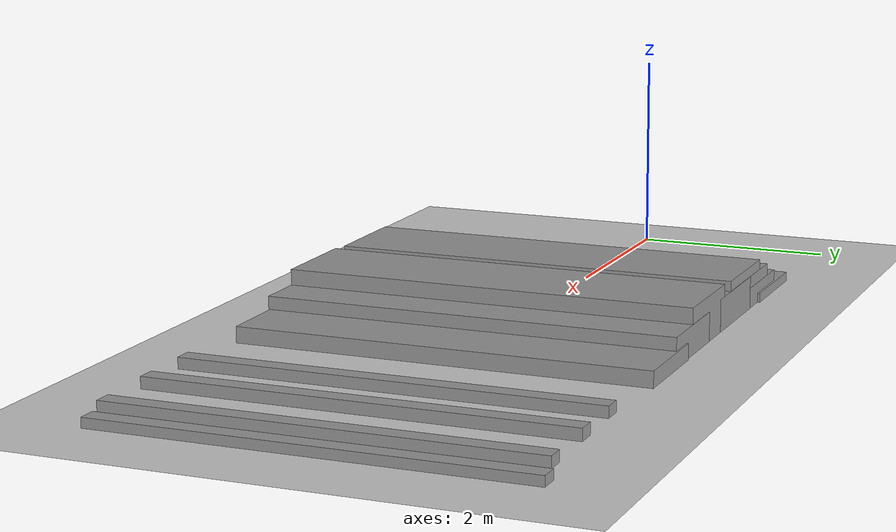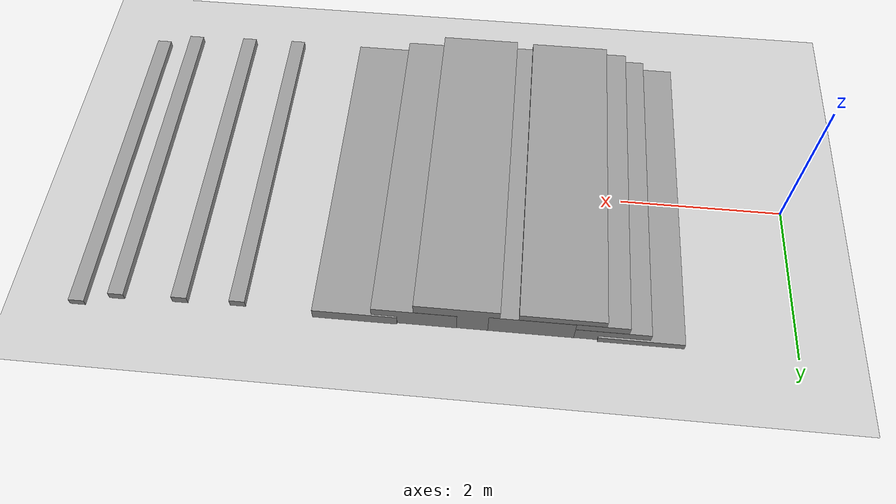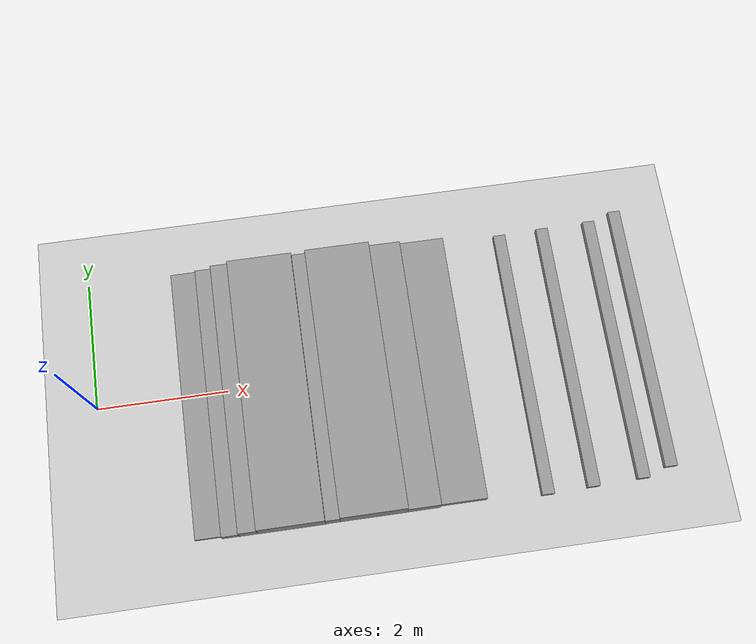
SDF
<sdf version="1.7">
 <world name="default">
  <light name="sun" type="directional">
   <pose>0 0 10 0 -0 0</pose>
   <diffuse>0.8 0.8 0.8 1</diffuse>
   <specular>0.2 0.2 0.2 1</specular>
   <attenuation>
    <range>1000</range>
    <constant>0.9</constant>
    <linear>0.01</linear>
    <quadratic>0.001</quadratic>
   </attenuation>
   <direction>-0.5 0.1 -0.9</direction>
   <spot><inner_angle>0</inner_angle><outer_angle>0</outer_angle><falloff>0</falloff></spot>
  </light>
  <model name="ground_plane">
   <static>1</static>
   <link name="link">
    <collision name="collision">
     <geometry><plane><normal>0 0 1</normal><size>100 100</size></plane></geometry>
     <surface>
      <contact><collide_bitmask>65535</collide_bitmask></contact>
      <friction><ode><mu>100</mu><mu2>50</mu2></ode></friction>
     </surface>
    </collision>
    <visual name="visual">
     <cast_shadows>0</cast_shadows>
     <geometry><plane><normal>0 0 1</normal><size>100 100</size></plane></geometry>
     <material>
      <script><uri>file://media/materials/scripts/gazebo.material</uri><name>Gazebo/Grey</name></script>
     </material>
    </visual>
   </link>
  </model>
  <gravity>0 0 -9.8</gravity>
  <magnetic_field>6e-06 2.3e-05 -4.2e-05</magnetic_field>
  <atmosphere type="adiabatic"/>
  <physics type="ode">
   <max_step_size>0.001</max_step_size>
   <real_time_factor>1</real_time_factor>
   <real_time_update_rate>1000</real_time_update_rate>
  </physics>
  <scene><ambient>0.4 0.4 0.4 1</ambient><background>0.7 0.7 0.7 1</background><shadows>1</shadows></scene>
  <audio><device>default</device></audio>
  <spherical_coordinates>
   <surface_model>EARTH_WGS84</surface_model>
   <latitude_deg>0</latitude_deg>
   <longitude_deg>0</longitude_deg>
   <elevation>0</elevation>
   <heading_deg>0</heading_deg>
  </spherical_coordinates>
  <model name="unit_box_clone_0_clone_clone">
   <pose>1.79924 -0.104625 0.034537 0 -0 0</pose>
   <link name="link">
    <inertial>
     <mass>1</mass>
     <inertia>
      <ixx>0.166667</ixx>
      <ixy>0</ixy>
      <ixz>0</ixz>
      <iyy>0.166667</iyy>
      <iyz>0</iyz>
      <izz>0.166667</izz>
     </inertia>
    </inertial>
    <collision name="collision"><geometry><box><size>1 4.16528 0.105879</size></box></geometry></collision>
    <visual name="visual">
     <geometry><box><size>1 4.16528 0.105879</size></box></geometry>
     <material>
      <script><name>Gazebo/Grey</name><uri>file://media/materials/scripts/gazebo.material</uri></script>
     </material>
    </visual>
    <kinematic>1</kinematic>
   </link>
  </model>
  <model name="unit_box_clone_0_clone_clone_clone">
   <pose>2.19726 -0.128562 0.034537 0 -0 0</pose>
   <link name="link">
    <inertial>
     <mass>1</mass>
     <inertia>
      <ixx>0.166667</ixx>
      <ixy>0</ixy>
      <ixz>0</ixz>
      <iyy>0.166667</iyy>
      <iyz>0</iyz>
      <izz>0.166667</izz>
     </inertia>
    </inertial>
    <collision name="collision"><geometry><box><size>1 4.16528 0.328397</size></box></geometry></collision>
    <visual name="visual">
     <geometry><box><size>1 4.16528 0.328397</size></box></geometry>
     <material>
      <script><name>Gazebo/Grey</name><uri>file://media/materials/scripts/gazebo.material</uri></script>
     </material>
    </visual>
    <kinematic>1</kinematic>
   </link>
  </model>
  <model name="unit_box_clone_0_clone_clone_clone_0">
   <pose>2.45587 -0.129868 0.034537 0 -0 0</pose>
   <link name="link">
    <inertial>
     <mass>1</mass>
     <inertia>
      <ixx>0.166667</ixx>
      <ixy>0</ixy>
      <ixz>0</ixz>
      <iyy>0.166667</iyy>
      <iyz>0</iyz>
      <izz>0.166667</izz>
     </inertia>
    </inertial>
    <collision name="collision"><geometry><box><size>1 4.16528 0.569383</size></box></geometry></collision>
    <visual name="visual">
     <geometry><box><size>1 4.16528 0.569383</size></box></geometry>
     <material>
      <script><name>Gazebo/Grey</name><uri>file://media/materials/scripts/gazebo.material</uri></script>
     </material>
    </visual>
    <kinematic>1</kinematic>
   </link>
  </model>
  <model name="unit_box_clone_0_clone_clone_clone_0_clone">
   <pose>2.72862 -0.130825 0.034537 0 -0 0</pose>
   <link name="link">
    <inertial>
     <mass>1</mass>
     <inertia>
      <ixx>0.166667</ixx>
      <ixy>0</ixy>
      <ixz>0</ixz>
      <iyy>0.166667</iyy>
      <iyz>0</iyz>
      <izz>0.166667</izz>
     </inertia>
    </inertial>
    <collision name="collision"><geometry><box><size>1 4.16528 0.772294</size></box></geometry></collision>
    <visual name="visual">
     <geometry><box><size>1 4.16528 0.772294</size></box></geometry>
     <material>
      <script><name>Gazebo/Grey</name><uri>file://media/materials/scripts/gazebo.material</uri></script>
     </material>
    </visual>
    <kinematic>1</kinematic>
   </link>
  </model>
  <model name="unit_box_clone_0_clone_clone_clone_0_clone_0">
   <pose>3.07183 -0.126437 0.034537 0 -0 0</pose>
   <link name="link">
    <inertial>
     <mass>1</mass>
     <inertia>
      <ixx>0.166667</ixx>
      <ixy>0</ixy>
      <ixz>0</ixz>
      <iyy>0.166667</iyy>
      <iyz>0</iyz>
      <izz>0.166667</izz>
     </inertia>
    </inertial>
    <collision name="collision"><geometry><box><size>1 4.16528 0.569383</size></box></geometry></collision>
    <visual name="visual">
     <geometry><box><size>1 4.16528 0.569383</size></box></geometry>
     <material>
      <script><name>Gazebo/Grey</name><uri>file://media/materials/scripts/gazebo.material</uri></script>
     </material>
    </visual>
    <kinematic>1</kinematic>
   </link>
  </model>
  <model name="unit_box_clone_0_clone_clone_clone_0_clone_0_clone">
   <pose>3.94383 -0.126661 0.034537 0 -0 0</pose>
   <link name="link">
    <inertial>
     <mass>1</mass>
     <inertia>
      <ixx>0.166667</ixx>
      <ixy>0</ixy>
      <ixz>0</ixz>
      <iyy>0.166667</iyy>
      <iyz>0</iyz>
      <izz>0.166667</izz>
     </inertia>
    </inertial>
    <collision name="collision"><geometry><box><size>1 4.16528 0.81506</size></box></geometry></collision>
    <visual name="visual">
     <geometry><box><size>1 4.16528 0.81506</size></box></geometry>
     <material>
      <script><name>Gazebo/Grey</name><uri>file://media/materials/scripts/gazebo.material</uri></script>
     </material>
    </visual>
    <kinematic>1</kinematic>
   </link>
  </model>
  <model name="unit_box_clone_0_clone_clone_clone_0_clone_0_clone_clone">
   <pose>4.43607 -0.124263 0.034537 0 -0 0</pose>
   <link name="link">
    <inertial>
     <mass>1</mass>
     <inertia>
      <ixx>0.166667</ixx>
      <ixy>0</ixy>
      <ixz>0</ixz>
      <iyy>0.166667</iyy>
      <iyz>0</iyz>
      <izz>0.166667</izz>
     </inertia>
    </inertial>
    <collision name="collision"><geometry><box><size>1 4.16528 0.49773</size></box></geometry></collision>
    <visual name="visual">
     <geometry><box><size>1 4.16528 0.49773</size></box></geometry>
     <material>
      <script><name>Gazebo/Grey</name><uri>file://media/materials/scripts/gazebo.material</uri></script>
     </material>
    </visual>
    <kinematic>1</kinematic>
   </link>
  </model>
  <model name="unit_box_clone_0_clone_clone_clone_0_clone_0_clone_clone_clone">
   <pose>5.13455 -0.107111 0.034537 0 -0 0</pose>
   <link name="link">
    <inertial>
     <mass>1</mass>
     <inertia>
      <ixx>0.166667</ixx>
      <ixy>0</ixy>
      <ixz>0</ixz>
      <iyy>0.166667</iyy>
      <iyz>0</iyz>
      <izz>0.166667</izz>
     </inertia>
    </inertial>
    <collision name="collision"><geometry><box><size>1 4.16528 0.236936</size></box></geometry></collision>
    <visual name="visual">
     <geometry><box><size>1 4.16528 0.236936</size></box></geometry>
     <material>
      <script><name>Gazebo/Grey</name><uri>file://media/materials/scripts/gazebo.material</uri></script>
     </material>
    </visual>
    <kinematic>1</kinematic>
   </link>
  </model>
  <model name="unit_box_clone_0_clone_clone_clone_0_clone_0_clone_clone_clone_clone">
   <pose>6.54045 -0.168541 0.034537 0 -0 0</pose>
   <link name="link">
    <inertial>
     <mass>1</mass>
     <inertia>
      <ixx>0.166667</ixx>
      <ixy>0</ixy>
      <ixz>0</ixz>
      <iyy>0.166667</iyy>
      <iyz>0</iyz>
      <izz>0.166667</izz>
     </inertia>
    </inertial>
    <collision name="collision"><geometry><box><size>0.18698 4.16528 0.136429</size></box></geometry></collision>
    <visual name="visual">
     <geometry><box><size>0.18698 4.16528 0.136429</size></box></geometry>
     <material>
      <script><name>Gazebo/Grey</name><uri>file://media/materials/scripts/gazebo.material</uri></script>
     </material>
    </visual>
    <kinematic>1</kinematic>
   </link>
  </model>
  <model name="unit_box_clone_0_clone_clone_clone_0_clone_0_clone_clone_clone_clone_clone">
   <pose>7.23173 -0.15091 0.034537 0 -0 0</pose>
   <link name="link">
    <inertial>
     <mass>1</mass>
     <inertia>
      <ixx>0.166667</ixx>
      <ixy>0</ixy>
      <ixz>0</ixz>
      <iyy>0.166667</iyy>
      <iyz>0</iyz>
      <izz>0.166667</izz>
     </inertia>
    </inertial>
    <collision name="collision"><geometry><box><size>0.18698 4.16528 0.14642</size></box></geometry></collision>
    <visual name="visual">
     <geometry><box><size>0.18698 4.16528 0.14642</size></box></geometry>
     <material>
      <script><name>Gazebo/Grey</name><uri>file://media/materials/scripts/gazebo.material</uri></script>
     </material>
    </visual>
    <kinematic>1</kinematic>
   </link>
  </model>
  <model name="unit_box_clone_0_clone_clone_clone_0_clone_0_clone_clone_clone_clone_clone_0">
   <pose>7.99334 -0.131616 0.034537 0 -0 0</pose>
   <link name="link">
    <inertial>
     <mass>1</mass>
     <inertia>
      <ixx>0.166667</ixx>
      <ixy>0</ixy>
      <ixz>0</ixz>
      <iyy>0.166667</iyy>
      <iyz>0</iyz>
      <izz>0.166667</izz>
     </inertia>
    </inertial>
    <collision name="collision"><geometry><box><size>0.18698 4.16528 0.129804</size></box></geometry></collision>
    <visual name="visual">
     <geometry><box><size>0.18698 4.16528 0.129804</size></box></geometry>
     <material>
      <script><name>Gazebo/Grey</name><uri>file://media/materials/scripts/gazebo.material</uri></script>
     </material>
    </visual>
    <kinematic>1</kinematic>
   </link>
  </model>
  <model name="unit_box_clone_0_clone_clone_clone_0_clone_0_clone_clone_clone_clone_clone_1">
   <pose>8.43642 -0.013101 0.034537 0 -0 0</pose>
   <link name="link">
    <inertial>
     <mass>1</mass>
     <inertia>
      <ixx>0.166667</ixx>
      <ixy>0</ixy>
      <ixz>0</ixz>
      <iyy>0.166667</iyy>
      <iyz>0</iyz>
      <izz>0.166667</izz>
     </inertia>
    </inertial>
    <collision name="collision"><geometry><box><size>0.18698 4.16528 0.10581</size></box></geometry></collision>
    <visual name="visual">
     <geometry><box><size>0.18698 4.16528 0.10581</size></box></geometry>
     <material>
      <script><name>Gazebo/Grey</name><uri>file://media/materials/scripts/gazebo.material</uri></script>
     </material>
    </visual>
    <kinematic>1</kinematic>
   </link>
  </model>
 </world>
</sdf>
